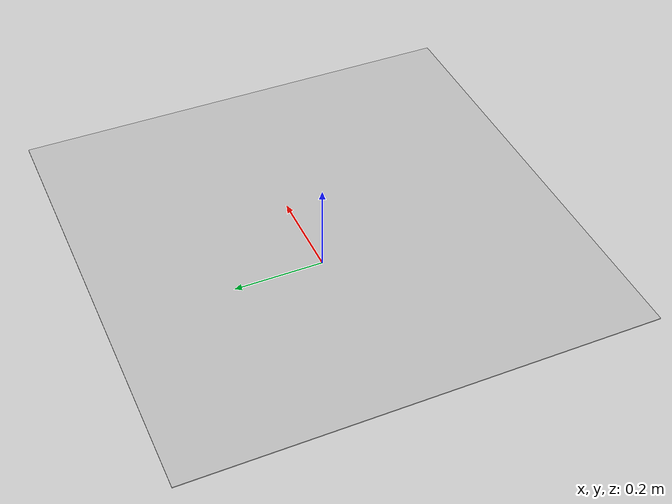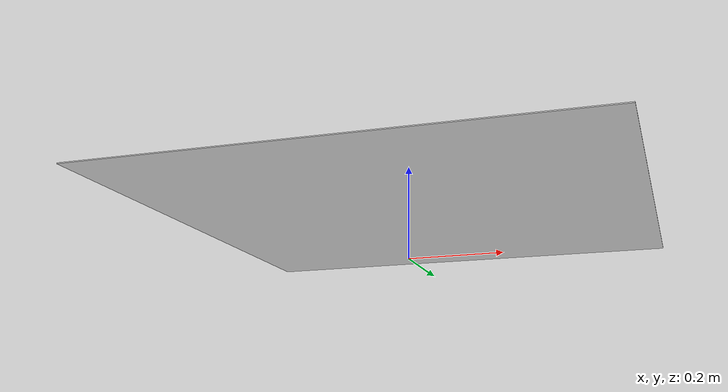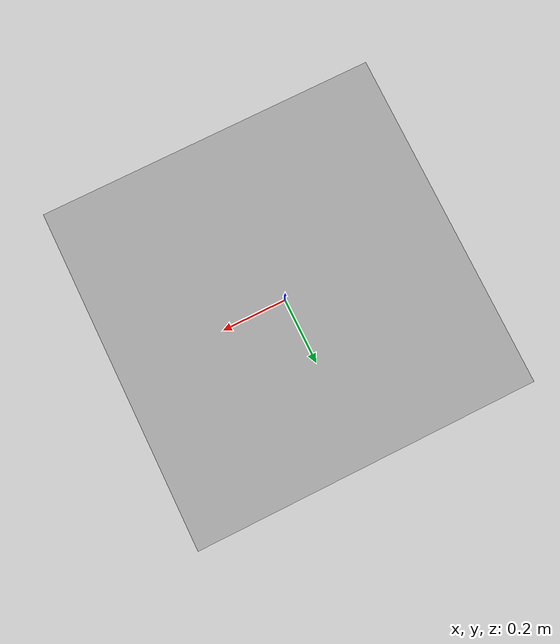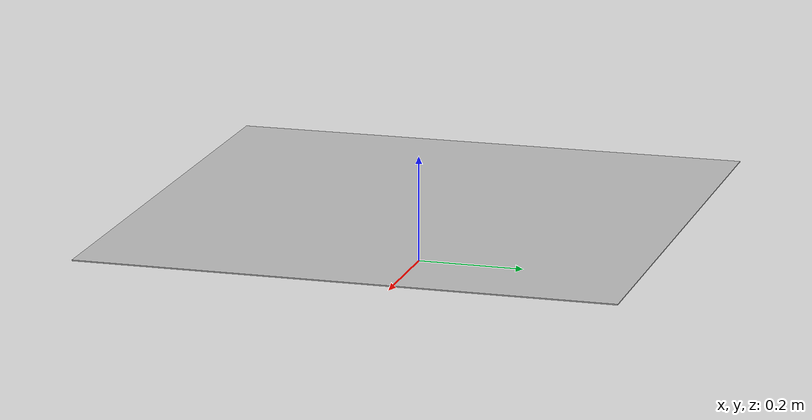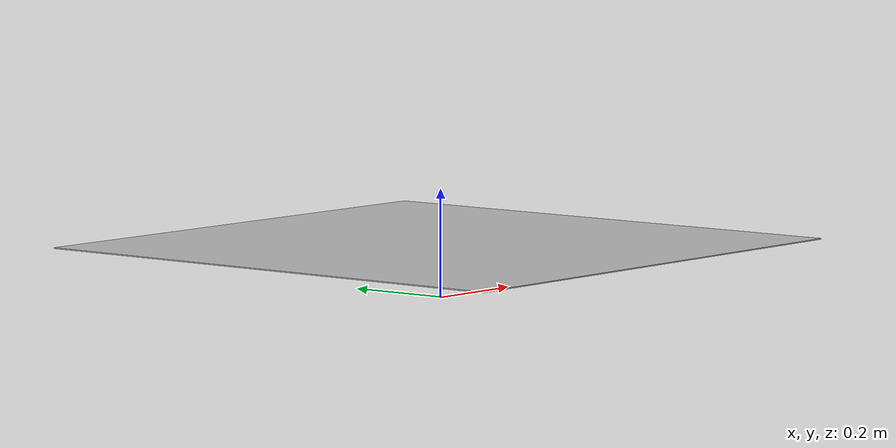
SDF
<?xml version="1.0"?>
<sdf version="1.6">
  <model name="new_baseGround3">
    <static>true</static>
    <link name="baseGround3_link">
      <visual name="visual_baseGround3">
        <cast_shadows>true</cast_shadows>
        <geometry>
          <mesh>
            <uri>model://cbrBaseground3/meshes/generic_base.dae</uri>
          </mesh>
        </geometry>
        <material>
          <script>
            <uri>model://cbrBaseground3/materials/scripts</uri>
            <uri>model://cbrBaseground3/materials/textures</uri>
            <name>baseGround3/color</name>
          </script>
        </material>
      </visual>
      <collision name="collision_baseGround3">
        <geometry>
          <mesh>
            <uri>model://cbrBaseground3/meshes/generic_base.dae</uri>
          </mesh>
        </geometry>
      </collision>
    </link>
  </model>
</sdf>
